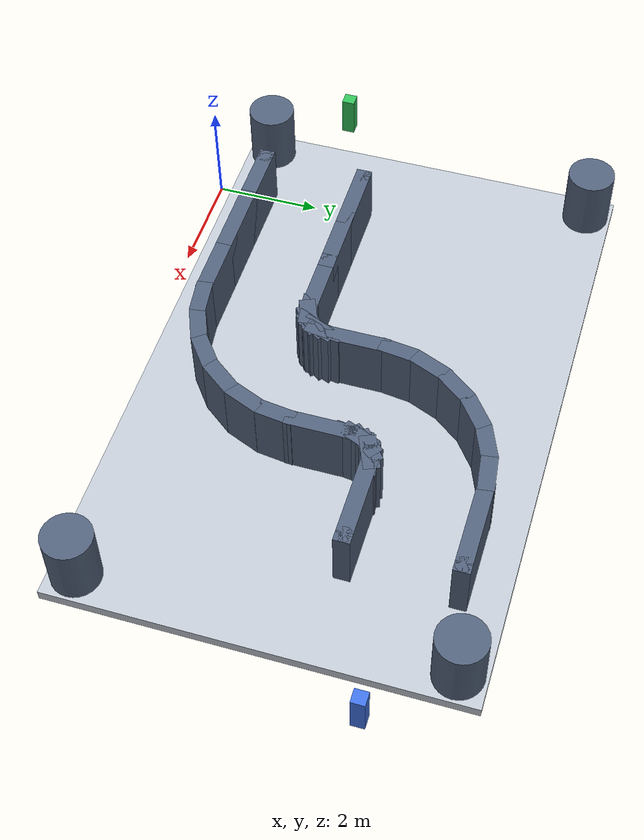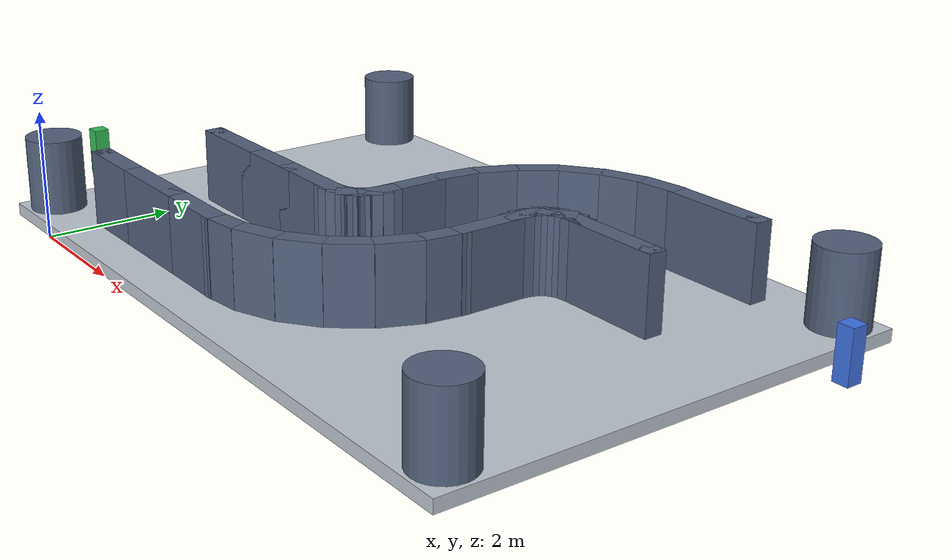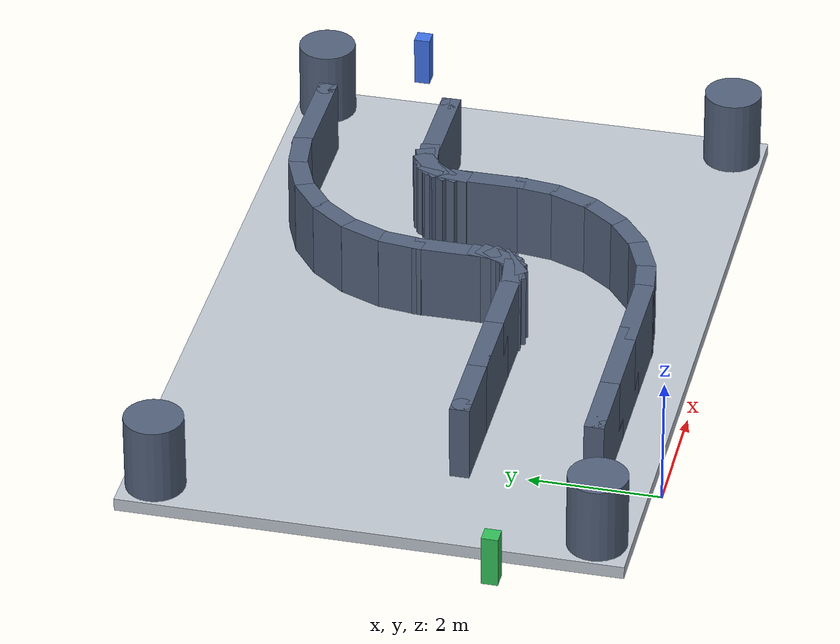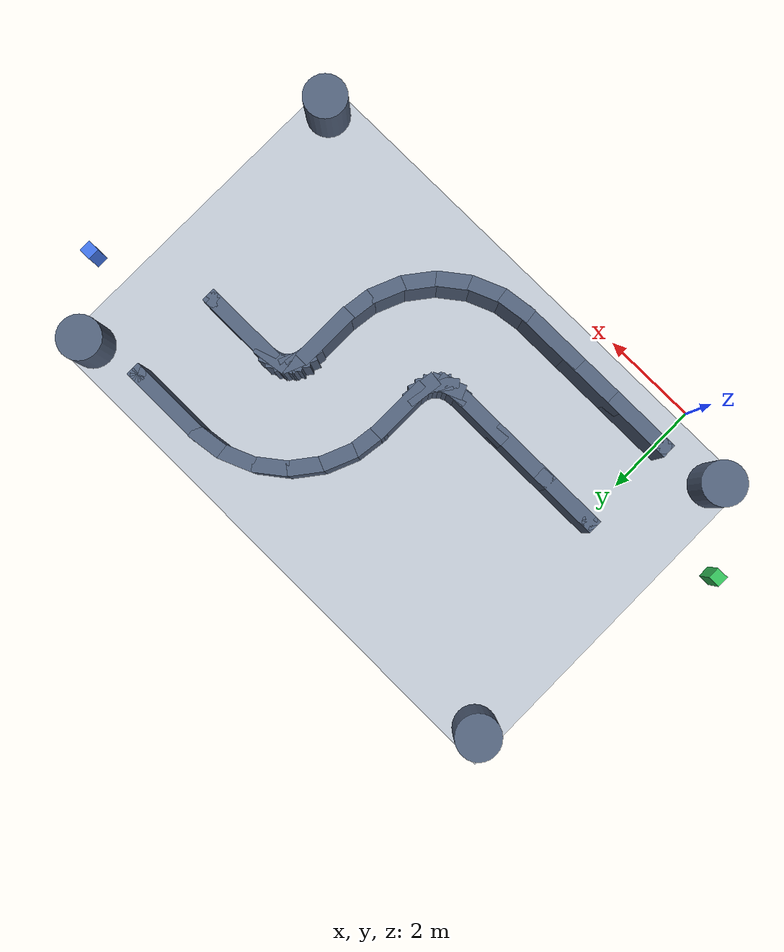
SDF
<?xml version="1.0"?>
<sdf version="1.6">
  <world name="u_maze">
    <light type="directional" name="sun">
      <pose>0 0 10 0 0 0</pose>
      <diffuse>0.8 0.8 0.8 1</diffuse>
      <specular>0.2 0.2 0.2 1</specular>
      <direction>-0.5 0.5 -1</direction>
    </light>
    <scene>
      <ambient>0.3 0.3 0.3 1</ambient>
      <background>0.7 0.7 0.7 1</background>
      <shadows>true</shadows>
    </scene>
    <model name="ground_plane">
      <static>true</static>
      <pose>4.000 4.000 -0.1 0 0 0</pose>
      <link name="link">
        <collision name="collision">
          <geometry><box><size>11.60 7.60 0.2</size></box></geometry>
          <surface>
            <friction><ode><mu>1</mu><mu2>1</mu2></ode></friction>
          </surface>
        </collision>
        <visual name="visual">
          <geometry><box><size>11.60 7.60 0.2</size></box></geometry>
          <material>
            <ambient>0.75 0.78 0.82 1</ambient>
            <diffuse>0.75 0.78 0.82 1</diffuse>
          </material>
        </visual>
      </link>
    </model>
    <!-- ============ 迷宫墙体（深蓝灰；box 墙段 + 圆柱圆头） ============ -->
    <model name="wall_00">
      <static>true</static>
      <pose>0.583 3.000 0.600 0 0 0.0000</pose>
      <link name="link">
        <collision name="collision">
          <geometry><box><size>1.467 0.300 1.2</size></box></geometry>
        </collision>
        <visual name="visual">
          <geometry><box><size>1.467 0.300 1.2</size></box></geometry>
          <material><ambient>0.32 0.38 0.48 1</ambient><diffuse>0.32 0.38 0.48 1</diffuse></material>
        </visual>
      </link>
    </model>
    <model name="wall_01">
      <static>true</static>
      <pose>0.583 1.000 0.600 0 0 0.0000</pose>
      <link name="link">
        <collision name="collision">
          <geometry><box><size>1.467 0.300 1.2</size></box></geometry>
        </collision>
        <visual name="visual">
          <geometry><box><size>1.467 0.300 1.2</size></box></geometry>
          <material><ambient>0.32 0.38 0.48 1</ambient><diffuse>0.32 0.38 0.48 1</diffuse></material>
        </visual>
      </link>
    </model>
    <model name="wall_02">
      <static>true</static>
      <pose>1.750 3.000 0.600 0 0 0.0000</pose>
      <link name="link">
        <collision name="collision">
          <geometry><box><size>1.467 0.300 1.2</size></box></geometry>
        </collision>
        <visual name="visual">
          <geometry><box><size>1.467 0.300 1.2</size></box></geometry>
          <material><ambient>0.32 0.38 0.48 1</ambient><diffuse>0.32 0.38 0.48 1</diffuse></material>
        </visual>
      </link>
    </model>
    <model name="wall_03">
      <static>true</static>
      <pose>1.750 1.000 0.600 0 0 0.0000</pose>
      <link name="link">
        <collision name="collision">
          <geometry><box><size>1.467 0.300 1.2</size></box></geometry>
        </collision>
        <visual name="visual">
          <geometry><box><size>1.467 0.300 1.2</size></box></geometry>
          <material><ambient>0.32 0.38 0.48 1</ambient><diffuse>0.32 0.38 0.48 1</diffuse></material>
        </visual>
      </link>
    </model>
    <model name="wall_04">
      <static>true</static>
      <pose>2.917 3.000 0.600 0 0 0.0000</pose>
      <link name="link">
        <collision name="collision">
          <geometry><box><size>1.467 0.300 1.2</size></box></geometry>
        </collision>
        <visual name="visual">
          <geometry><box><size>1.467 0.300 1.2</size></box></geometry>
          <material><ambient>0.32 0.38 0.48 1</ambient><diffuse>0.32 0.38 0.48 1</diffuse></material>
        </visual>
      </link>
    </model>
    <model name="wall_05">
      <static>true</static>
      <pose>2.917 1.000 0.600 0 0 0.0000</pose>
      <link name="link">
        <collision name="collision">
          <geometry><box><size>1.467 0.300 1.2</size></box></geometry>
        </collision>
        <visual name="visual">
          <geometry><box><size>1.467 0.300 1.2</size></box></geometry>
          <material><ambient>0.32 0.38 0.48 1</ambient><diffuse>0.32 0.38 0.48 1</diffuse></material>
        </visual>
      </link>
    </model>
    <model name="wall_06">
      <static>true</static>
      <pose>3.564 3.017 0.600 0 0 0.1309</pose>
      <link name="link">
        <collision name="collision">
          <geometry><box><size>0.692 0.300 1.2</size></box></geometry>
        </collision>
        <visual name="visual">
          <geometry><box><size>0.692 0.300 1.2</size></box></geometry>
          <material><ambient>0.32 0.38 0.48 1</ambient><diffuse>0.32 0.38 0.48 1</diffuse></material>
        </visual>
      </link>
    </model>
    <model name="wall_07">
      <static>true</static>
      <pose>3.825 1.034 0.600 0 0 0.1309</pose>
      <link name="link">
        <collision name="collision">
          <geometry><box><size>0.692 0.300 1.2</size></box></geometry>
        </collision>
        <visual name="visual">
          <geometry><box><size>0.692 0.300 1.2</size></box></geometry>
          <material><ambient>0.32 0.38 0.48 1</ambient><diffuse>0.32 0.38 0.48 1</diffuse></material>
        </visual>
      </link>
    </model>
    <model name="wall_08">
      <static>true</static>
      <pose>3.686 3.050 0.600 0 0 0.3927</pose>
      <link name="link">
        <collision name="collision">
          <geometry><box><size>0.692 0.300 1.2</size></box></geometry>
        </collision>
        <visual name="visual">
          <geometry><box><size>0.692 0.300 1.2</size></box></geometry>
          <material><ambient>0.32 0.38 0.48 1</ambient><diffuse>0.32 0.38 0.48 1</diffuse></material>
        </visual>
      </link>
    </model>
    <model name="wall_09">
      <static>true</static>
      <pose>4.452 1.202 0.600 0 0 0.3927</pose>
      <link name="link">
        <collision name="collision">
          <geometry><box><size>0.692 0.300 1.2</size></box></geometry>
        </collision>
        <visual name="visual">
          <geometry><box><size>0.692 0.300 1.2</size></box></geometry>
          <material><ambient>0.32 0.38 0.48 1</ambient><diffuse>0.32 0.38 0.48 1</diffuse></material>
        </visual>
      </link>
    </model>
    <model name="wall_10">
      <static>true</static>
      <pose>3.797 3.114 0.600 0 0 0.6545</pose>
      <link name="link">
        <collision name="collision">
          <geometry><box><size>0.692 0.300 1.2</size></box></geometry>
        </collision>
        <visual name="visual">
          <geometry><box><size>0.692 0.300 1.2</size></box></geometry>
          <material><ambient>0.32 0.38 0.48 1</ambient><diffuse>0.32 0.38 0.48 1</diffuse></material>
        </visual>
      </link>
    </model>
    <model name="wall_11">
      <static>true</static>
      <pose>5.014 1.527 0.600 0 0 0.6545</pose>
      <link name="link">
        <collision name="collision">
          <geometry><box><size>0.692 0.300 1.2</size></box></geometry>
        </collision>
        <visual name="visual">
          <geometry><box><size>0.692 0.300 1.2</size></box></geometry>
          <material><ambient>0.32 0.38 0.48 1</ambient><diffuse>0.32 0.38 0.48 1</diffuse></material>
        </visual>
      </link>
    </model>
    <model name="wall_12">
      <static>true</static>
      <pose>3.886 3.203 0.600 0 0 0.9163</pose>
      <link name="link">
        <collision name="collision">
          <geometry><box><size>0.692 0.300 1.2</size></box></geometry>
        </collision>
        <visual name="visual">
          <geometry><box><size>0.692 0.300 1.2</size></box></geometry>
          <material><ambient>0.32 0.38 0.48 1</ambient><diffuse>0.32 0.38 0.48 1</diffuse></material>
        </visual>
      </link>
    </model>
    <model name="wall_13">
      <static>true</static>
      <pose>5.473 1.986 0.600 0 0 0.9163</pose>
      <link name="link">
        <collision name="collision">
          <geometry><box><size>0.692 0.300 1.2</size></box></geometry>
        </collision>
        <visual name="visual">
          <geometry><box><size>0.692 0.300 1.2</size></box></geometry>
          <material><ambient>0.32 0.38 0.48 1</ambient><diffuse>0.32 0.38 0.48 1</diffuse></material>
        </visual>
      </link>
    </model>
    <model name="wall_14">
      <static>true</static>
      <pose>3.950 3.314 0.600 0 0 1.1781</pose>
      <link name="link">
        <collision name="collision">
          <geometry><box><size>0.692 0.300 1.2</size></box></geometry>
        </collision>
        <visual name="visual">
          <geometry><box><size>0.692 0.300 1.2</size></box></geometry>
          <material><ambient>0.32 0.38 0.48 1</ambient><diffuse>0.32 0.38 0.48 1</diffuse></material>
        </visual>
      </link>
    </model>
    <model name="wall_15">
      <static>true</static>
      <pose>5.798 2.548 0.600 0 0 1.1781</pose>
      <link name="link">
        <collision name="collision">
          <geometry><box><size>0.692 0.300 1.2</size></box></geometry>
        </collision>
        <visual name="visual">
          <geometry><box><size>0.692 0.300 1.2</size></box></geometry>
          <material><ambient>0.32 0.38 0.48 1</ambient><diffuse>0.32 0.38 0.48 1</diffuse></material>
        </visual>
      </link>
    </model>
    <model name="wall_16">
      <static>true</static>
      <pose>3.983 3.436 0.600 0 0 1.4399</pose>
      <link name="link">
        <collision name="collision">
          <geometry><box><size>0.692 0.300 1.2</size></box></geometry>
        </collision>
        <visual name="visual">
          <geometry><box><size>0.692 0.300 1.2</size></box></geometry>
          <material><ambient>0.32 0.38 0.48 1</ambient><diffuse>0.32 0.38 0.48 1</diffuse></material>
        </visual>
      </link>
    </model>
    <model name="wall_17">
      <static>true</static>
      <pose>5.966 3.175 0.600 0 0 1.4399</pose>
      <link name="link">
        <collision name="collision">
          <geometry><box><size>0.692 0.300 1.2</size></box></geometry>
        </collision>
        <visual name="visual">
          <geometry><box><size>0.692 0.300 1.2</size></box></geometry>
          <material><ambient>0.32 0.38 0.48 1</ambient><diffuse>0.32 0.38 0.48 1</diffuse></material>
        </visual>
      </link>
    </model>
    <model name="wall_18">
      <static>true</static>
      <pose>4.000 4.000 0.600 0 0 1.5708</pose>
      <link name="link">
        <collision name="collision">
          <geometry><box><size>1.300 0.300 1.2</size></box></geometry>
        </collision>
        <visual name="visual">
          <geometry><box><size>1.300 0.300 1.2</size></box></geometry>
          <material><ambient>0.32 0.38 0.48 1</ambient><diffuse>0.32 0.38 0.48 1</diffuse></material>
        </visual>
      </link>
    </model>
    <model name="wall_19">
      <static>true</static>
      <pose>6.000 4.000 0.600 0 0 1.5708</pose>
      <link name="link">
        <collision name="collision">
          <geometry><box><size>1.300 0.300 1.2</size></box></geometry>
        </collision>
        <visual name="visual">
          <geometry><box><size>1.300 0.300 1.2</size></box></geometry>
          <material><ambient>0.32 0.38 0.48 1</ambient><diffuse>0.32 0.38 0.48 1</diffuse></material>
        </visual>
      </link>
    </model>
    <model name="wall_20">
      <static>true</static>
      <pose>4.034 4.825 0.600 0 0 1.4399</pose>
      <link name="link">
        <collision name="collision">
          <geometry><box><size>0.692 0.300 1.2</size></box></geometry>
        </collision>
        <visual name="visual">
          <geometry><box><size>0.692 0.300 1.2</size></box></geometry>
          <material><ambient>0.32 0.38 0.48 1</ambient><diffuse>0.32 0.38 0.48 1</diffuse></material>
        </visual>
      </link>
    </model>
    <model name="wall_21">
      <static>true</static>
      <pose>6.017 4.564 0.600 0 0 1.4399</pose>
      <link name="link">
        <collision name="collision">
          <geometry><box><size>0.692 0.300 1.2</size></box></geometry>
        </collision>
        <visual name="visual">
          <geometry><box><size>0.692 0.300 1.2</size></box></geometry>
          <material><ambient>0.32 0.38 0.48 1</ambient><diffuse>0.32 0.38 0.48 1</diffuse></material>
        </visual>
      </link>
    </model>
    <model name="wall_22">
      <static>true</static>
      <pose>4.202 5.452 0.600 0 0 1.1781</pose>
      <link name="link">
        <collision name="collision">
          <geometry><box><size>0.692 0.300 1.2</size></box></geometry>
        </collision>
        <visual name="visual">
          <geometry><box><size>0.692 0.300 1.2</size></box></geometry>
          <material><ambient>0.32 0.38 0.48 1</ambient><diffuse>0.32 0.38 0.48 1</diffuse></material>
        </visual>
      </link>
    </model>
    <model name="wall_23">
      <static>true</static>
      <pose>6.050 4.686 0.600 0 0 1.1781</pose>
      <link name="link">
        <collision name="collision">
          <geometry><box><size>0.692 0.300 1.2</size></box></geometry>
        </collision>
        <visual name="visual">
          <geometry><box><size>0.692 0.300 1.2</size></box></geometry>
          <material><ambient>0.32 0.38 0.48 1</ambient><diffuse>0.32 0.38 0.48 1</diffuse></material>
        </visual>
      </link>
    </model>
    <model name="wall_24">
      <static>true</static>
      <pose>4.527 6.014 0.600 0 0 0.9163</pose>
      <link name="link">
        <collision name="collision">
          <geometry><box><size>0.692 0.300 1.2</size></box></geometry>
        </collision>
        <visual name="visual">
          <geometry><box><size>0.692 0.300 1.2</size></box></geometry>
          <material><ambient>0.32 0.38 0.48 1</ambient><diffuse>0.32 0.38 0.48 1</diffuse></material>
        </visual>
      </link>
    </model>
    <model name="wall_25">
      <static>true</static>
      <pose>6.114 4.797 0.600 0 0 0.9163</pose>
      <link name="link">
        <collision name="collision">
          <geometry><box><size>0.692 0.300 1.2</size></box></geometry>
        </collision>
        <visual name="visual">
          <geometry><box><size>0.692 0.300 1.2</size></box></geometry>
          <material><ambient>0.32 0.38 0.48 1</ambient><diffuse>0.32 0.38 0.48 1</diffuse></material>
        </visual>
      </link>
    </model>
    <model name="wall_26">
      <static>true</static>
      <pose>4.986 6.473 0.600 0 0 0.6545</pose>
      <link name="link">
        <collision name="collision">
          <geometry><box><size>0.692 0.300 1.2</size></box></geometry>
        </collision>
        <visual name="visual">
          <geometry><box><size>0.692 0.300 1.2</size></box></geometry>
          <material><ambient>0.32 0.38 0.48 1</ambient><diffuse>0.32 0.38 0.48 1</diffuse></material>
        </visual>
      </link>
    </model>
    <model name="wall_27">
      <static>true</static>
      <pose>6.203 4.886 0.600 0 0 0.6545</pose>
      <link name="link">
        <collision name="collision">
          <geometry><box><size>0.692 0.300 1.2</size></box></geometry>
        </collision>
        <visual name="visual">
          <geometry><box><size>0.692 0.300 1.2</size></box></geometry>
          <material><ambient>0.32 0.38 0.48 1</ambient><diffuse>0.32 0.38 0.48 1</diffuse></material>
        </visual>
      </link>
    </model>
    <model name="wall_28">
      <static>true</static>
      <pose>5.548 6.798 0.600 0 0 0.3927</pose>
      <link name="link">
        <collision name="collision">
          <geometry><box><size>0.692 0.300 1.2</size></box></geometry>
        </collision>
        <visual name="visual">
          <geometry><box><size>0.692 0.300 1.2</size></box></geometry>
          <material><ambient>0.32 0.38 0.48 1</ambient><diffuse>0.32 0.38 0.48 1</diffuse></material>
        </visual>
      </link>
    </model>
    <model name="wall_29">
      <static>true</static>
      <pose>6.314 4.950 0.600 0 0 0.3927</pose>
      <link name="link">
        <collision name="collision">
          <geometry><box><size>0.692 0.300 1.2</size></box></geometry>
        </collision>
        <visual name="visual">
          <geometry><box><size>0.692 0.300 1.2</size></box></geometry>
          <material><ambient>0.32 0.38 0.48 1</ambient><diffuse>0.32 0.38 0.48 1</diffuse></material>
        </visual>
      </link>
    </model>
    <model name="wall_30">
      <static>true</static>
      <pose>6.175 6.966 0.600 0 0 0.1309</pose>
      <link name="link">
        <collision name="collision">
          <geometry><box><size>0.692 0.300 1.2</size></box></geometry>
        </collision>
        <visual name="visual">
          <geometry><box><size>0.692 0.300 1.2</size></box></geometry>
          <material><ambient>0.32 0.38 0.48 1</ambient><diffuse>0.32 0.38 0.48 1</diffuse></material>
        </visual>
      </link>
    </model>
    <model name="wall_31">
      <static>true</static>
      <pose>6.436 4.983 0.600 0 0 0.1309</pose>
      <link name="link">
        <collision name="collision">
          <geometry><box><size>0.692 0.300 1.2</size></box></geometry>
        </collision>
        <visual name="visual">
          <geometry><box><size>0.692 0.300 1.2</size></box></geometry>
          <material><ambient>0.32 0.38 0.48 1</ambient><diffuse>0.32 0.38 0.48 1</diffuse></material>
        </visual>
      </link>
    </model>
    <model name="wall_32">
      <static>true</static>
      <pose>7.250 7.000 0.600 0 0 0.0000</pose>
      <link name="link">
        <collision name="collision">
          <geometry><box><size>1.800 0.300 1.2</size></box></geometry>
        </collision>
        <visual name="visual">
          <geometry><box><size>1.800 0.300 1.2</size></box></geometry>
          <material><ambient>0.32 0.38 0.48 1</ambient><diffuse>0.32 0.38 0.48 1</diffuse></material>
        </visual>
      </link>
    </model>
    <model name="wall_33">
      <static>true</static>
      <pose>7.250 5.000 0.600 0 0 0.0000</pose>
      <link name="link">
        <collision name="collision">
          <geometry><box><size>1.800 0.300 1.2</size></box></geometry>
        </collision>
        <visual name="visual">
          <geometry><box><size>1.800 0.300 1.2</size></box></geometry>
          <material><ambient>0.32 0.38 0.48 1</ambient><diffuse>0.32 0.38 0.48 1</diffuse></material>
        </visual>
      </link>
    </model>
    <model name="pillar_00">
      <static>true</static>
      <pose>0.000 3.000 0.600 0 0 0</pose>
      <link name="link">
        <collision name="collision">
          <geometry><cylinder><radius>0.150</radius><length>1.2</length></cylinder></geometry>
        </collision>
        <visual name="visual">
          <geometry><cylinder><radius>0.150</radius><length>1.2</length></cylinder></geometry>
          <material><ambient>0.32 0.38 0.48 1</ambient><diffuse>0.32 0.38 0.48 1</diffuse></material>
        </visual>
      </link>
    </model>
    <model name="pillar_01">
      <static>true</static>
      <pose>8.000 7.000 0.600 0 0 0</pose>
      <link name="link">
        <collision name="collision">
          <geometry><cylinder><radius>0.150</radius><length>1.2</length></cylinder></geometry>
        </collision>
        <visual name="visual">
          <geometry><cylinder><radius>0.150</radius><length>1.2</length></cylinder></geometry>
          <material><ambient>0.32 0.38 0.48 1</ambient><diffuse>0.32 0.38 0.48 1</diffuse></material>
        </visual>
      </link>
    </model>
    <model name="pillar_02">
      <static>true</static>
      <pose>0.000 1.000 0.600 0 0 0</pose>
      <link name="link">
        <collision name="collision">
          <geometry><cylinder><radius>0.150</radius><length>1.2</length></cylinder></geometry>
        </collision>
        <visual name="visual">
          <geometry><cylinder><radius>0.150</radius><length>1.2</length></cylinder></geometry>
          <material><ambient>0.32 0.38 0.48 1</ambient><diffuse>0.32 0.38 0.48 1</diffuse></material>
        </visual>
      </link>
    </model>
    <model name="pillar_03">
      <static>true</static>
      <pose>8.000 5.000 0.600 0 0 0</pose>
      <link name="link">
        <collision name="collision">
          <geometry><cylinder><radius>0.150</radius><length>1.2</length></cylinder></geometry>
        </collision>
        <visual name="visual">
          <geometry><cylinder><radius>0.150</radius><length>1.2</length></cylinder></geometry>
          <material><ambient>0.32 0.38 0.48 1</ambient><diffuse>0.32 0.38 0.48 1</diffuse></material>
        </visual>
      </link>
    </model>
    <model name="pillar_04">
      <static>true</static>
      <pose>-1.300 0.700 0.600 0 0 0</pose>
      <link name="link">
        <collision name="collision">
          <geometry><cylinder><radius>0.450</radius><length>1.2</length></cylinder></geometry>
        </collision>
        <visual name="visual">
          <geometry><cylinder><radius>0.450</radius><length>1.2</length></cylinder></geometry>
          <material><ambient>0.32 0.38 0.48 1</ambient><diffuse>0.32 0.38 0.48 1</diffuse></material>
        </visual>
      </link>
    </model>
    <model name="pillar_05">
      <static>true</static>
      <pose>-1.300 7.300 0.600 0 0 0</pose>
      <link name="link">
        <collision name="collision">
          <geometry><cylinder><radius>0.450</radius><length>1.2</length></cylinder></geometry>
        </collision>
        <visual name="visual">
          <geometry><cylinder><radius>0.450</radius><length>1.2</length></cylinder></geometry>
          <material><ambient>0.32 0.38 0.48 1</ambient><diffuse>0.32 0.38 0.48 1</diffuse></material>
        </visual>
      </link>
    </model>
    <model name="pillar_06">
      <static>true</static>
      <pose>9.300 0.700 0.600 0 0 0</pose>
      <link name="link">
        <collision name="collision">
          <geometry><cylinder><radius>0.450</radius><length>1.2</length></cylinder></geometry>
        </collision>
        <visual name="visual">
          <geometry><cylinder><radius>0.450</radius><length>1.2</length></cylinder></geometry>
          <material><ambient>0.32 0.38 0.48 1</ambient><diffuse>0.32 0.38 0.48 1</diffuse></material>
        </visual>
      </link>
    </model>
    <model name="pillar_07">
      <static>true</static>
      <pose>9.300 7.300 0.600 0 0 0</pose>
      <link name="link">
        <collision name="collision">
          <geometry><cylinder><radius>0.450</radius><length>1.2</length></cylinder></geometry>
        </collision>
        <visual name="visual">
          <geometry><cylinder><radius>0.450</radius><length>1.2</length></cylinder></geometry>
          <material><ambient>0.32 0.38 0.48 1</ambient><diffuse>0.32 0.38 0.48 1</diffuse></material>
        </visual>
      </link>
    </model>
    <!-- ============ 起终点标记柱 ============ -->
    <model name="marker_entry">
      <static>true</static>
      <pose>-2.500 2.000 0.4 0 0 0</pose>
      <link name="link">
        <collision name="collision">
          <geometry><box><size>0.25 0.25 0.8</size></box></geometry>
        </collision>
        <visual name="visual">
          <geometry><box><size>0.25 0.25 0.8</size></box></geometry>
          <material><ambient>0.2 0.75 0.35 1</ambient><diffuse>0.2 0.75 0.35 1</diffuse></material>
        </visual>
      </link>
    </model>
    <model name="marker_exit">
      <static>true</static>
      <pose>10.500 6.000 0.4 0 0 0</pose>
      <link name="link">
        <collision name="collision">
          <geometry><box><size>0.25 0.25 0.8</size></box></geometry>
        </collision>
        <visual name="visual">
          <geometry><box><size>0.25 0.25 0.8</size></box></geometry>
          <material><ambient>0.25 0.45 0.9 1</ambient><diffuse>0.25 0.45 0.9 1</diffuse></material>
        </visual>
      </link>
    </model>
  </world>
</sdf>
